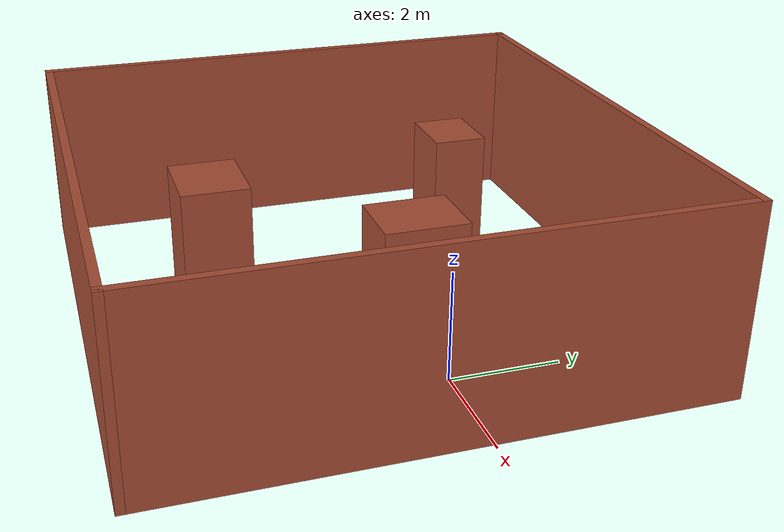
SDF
<?xml version='1.0'?>
<sdf version='1.5'>
  <model name='house_6'>
    <pose frame=''>-3.086 -0.702 0 0 -0 0</pose>
    <link name='Wall_10'>
      <collision name='Wall_10_Collision'>
        <geometry>
          <box>
            <size>1.5 1.25 2.5</size>
          </box>
        </geometry>
        <pose frame=''>0 0 1.25 0 -0 0</pose>
      </collision>
      <visual name='Wall_10_Visual'>
        <pose frame=''>0 0 1.25 0 -0 0</pose>
        <geometry>
          <box>
            <size>1.5 1.25 2.5</size>
          </box>
        </geometry>
        <material>
          <script>
            <uri>file://media/materials/scripts/gazebo.material</uri>
            <name>Gazebo/Bricks</name>
          </script>
          <ambient>1 1 1 1</ambient>
        </material>
      </visual>
      <pose frame=''>1.80293 0.523428 0 0 0 -1.5708</pose>
    </link>
    <link name='Wall_12'>
      <collision name='Wall_12_Collision'>
        <geometry>
          <box>
            <size>1.5 1.25 2.5</size>
          </box>
        </geometry>
        <pose frame=''>0 0 1.25 0 -0 0</pose>
      </collision>
      <visual name='Wall_12_Visual'>
        <pose frame=''>0 0 1.25 0 -0 0</pose>
        <geometry>
          <box>
            <size>1.5 1.25 2.5</size>
          </box>
        </geometry>
        <material>
          <script>
            <uri>file://media/materials/scripts/gazebo.material</uri>
            <name>Gazebo/Bricks</name>
          </script>
          <ambient>1 1 1 1</ambient>
        </material>
      </visual>
      <pose frame=''>-0.821768 -2.49349 0 0 -0 3.14159</pose>
    </link>
    <link name='Wall_3'>
      <collision name='Wall_3_Collision'>
        <geometry>
          <box>
            <size>10 0.15 3.5</size>
          </box>
        </geometry>
        <pose frame=''>0 0 1.75 0 -0 0</pose>
      </collision>
      <visual name='Wall_3_Visual'>
        <pose frame=''>0 0 1.75 0 -0 0</pose>
        <geometry>
          <box>
            <size>10 0.15 3.5</size>
          </box>
        </geometry>
        <material>
          <script>
            <uri>file://media/materials/scripts/gazebo.material</uri>
            <name>Gazebo/Bricks</name>
          </script>
          <ambient>1 1 1 1</ambient>
        </material>
      </visual>
      <pose frame=''>-0 4.925 0 0 -0 0</pose>
    </link>
    <link name='Wall_4'>
      <collision name='Wall_4_Collision'>
        <geometry>
          <box>
            <size>10 0.15 3.5</size>
          </box>
        </geometry>
        <pose frame=''>0 0 1.75 0 -0 0</pose>
      </collision>
      <visual name='Wall_4_Visual'>
        <pose frame=''>0 0 1.75 0 -0 0</pose>
        <geometry>
          <box>
            <size>10 0.15 3.5</size>
          </box>
        </geometry>
        <material>
          <script>
            <uri>file://media/materials/scripts/gazebo.material</uri>
            <name>Gazebo/Bricks</name>
          </script>
          <ambient>1 1 1 1</ambient>
        </material>
      </visual>
      <pose frame=''>4.925 0 0 0 0 -1.5708</pose>
    </link>
    <link name='Wall_5'>
      <collision name='Wall_5_Collision'>
        <geometry>
          <box>
            <size>10 0.15 3.5</size>
          </box>
        </geometry>
        <pose frame=''>0 0 1.75 0 -0 0</pose>
      </collision>
      <visual name='Wall_5_Visual'>
        <pose frame=''>0 0 1.75 0 -0 0</pose>
        <geometry>
          <box>
            <size>10 0.15 3.5</size>
          </box>
        </geometry>
        <material>
          <script>
            <uri>file://media/materials/scripts/gazebo.material</uri>
            <name>Gazebo/Bricks</name>
          </script>
          <ambient>1 1 1 1</ambient>
        </material>
      </visual>
      <pose frame=''>-0 -4.925 0 0 -0 3.14159</pose>
    </link>
    <link name='Wall_6'>
      <collision name='Wall_6_Collision'>
        <geometry>
          <box>
            <size>10 0.15 3.5</size>
          </box>
        </geometry>
        <pose frame=''>0 0 1.75 0 -0 0</pose>
      </collision>
      <visual name='Wall_6_Visual'>
        <pose frame=''>0 0 1.75 0 -0 0</pose>
        <geometry>
          <box>
            <size>10 0.15 3.5</size>
          </box>
        </geometry>
        <material>
          <script>
            <uri>file://media/materials/scripts/gazebo.material</uri>
            <name>Gazebo/Bricks</name>
          </script>
          <ambient>1 1 1 1</ambient>
        </material>
      </visual>
      <pose frame=''>-4.925 0 0 0 -0 1.5708</pose>
    </link>
    <link name='Wall_8'>
      <collision name='Wall_8_Collision'>
        <geometry>
          <box>
            <size>1.25 1 2.5</size>
          </box>
        </geometry>
        <pose frame=''>0 0 1.25 0 -0 0</pose>
      </collision>
      <visual name='Wall_8_Visual'>
        <pose frame=''>0 0 1.25 0 -0 0</pose>
        <geometry>
          <box>
            <size>1.25 1 2.5</size>
          </box>
        </geometry>
        <material>
          <script>
            <uri>file://media/materials/scripts/gazebo.material</uri>
            <name>Gazebo/Bricks</name>
          </script>
          <ambient>1 1 1 1</ambient>
        </material>
      </visual>
      <pose frame=''>-1.86686 2.54875 0 0 -0 0</pose>
    </link>
    <static>1</static>
  </model>
</sdf>
